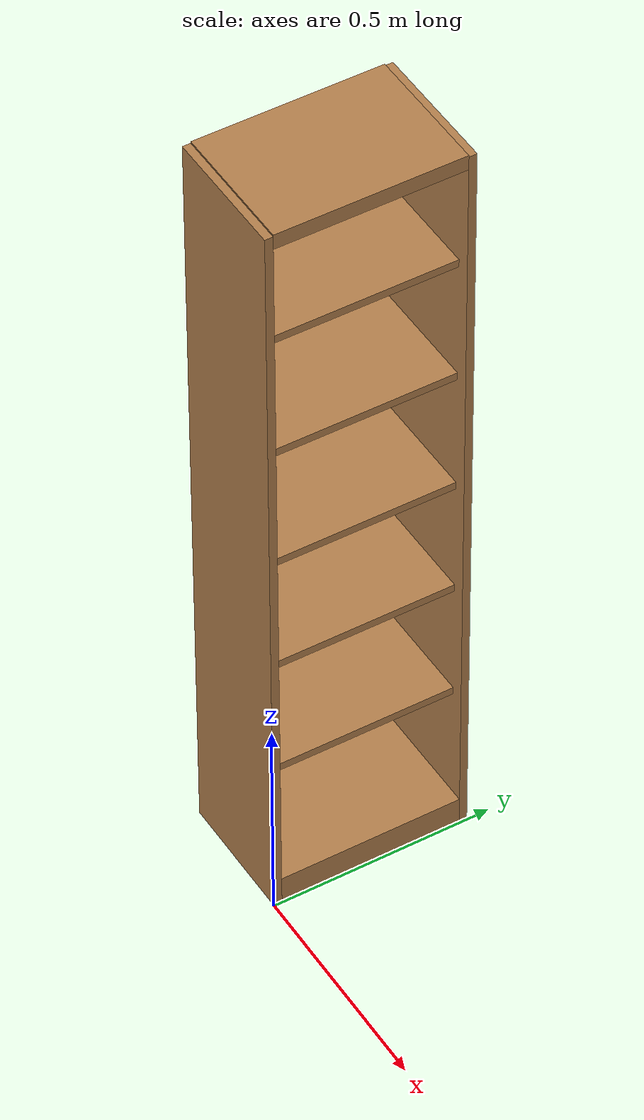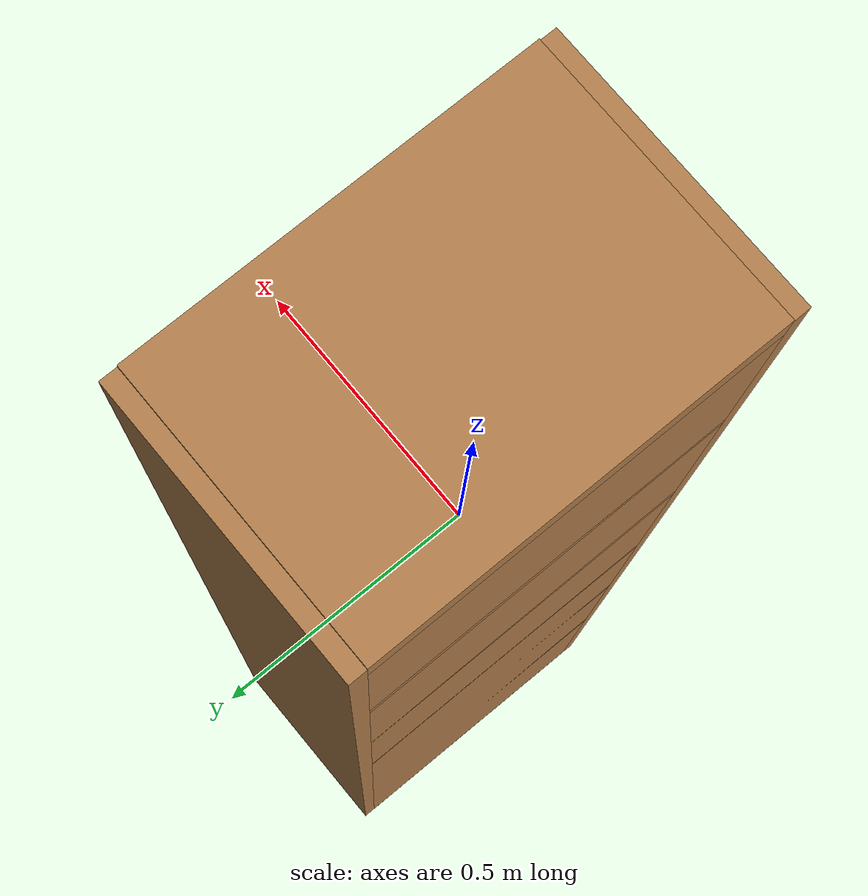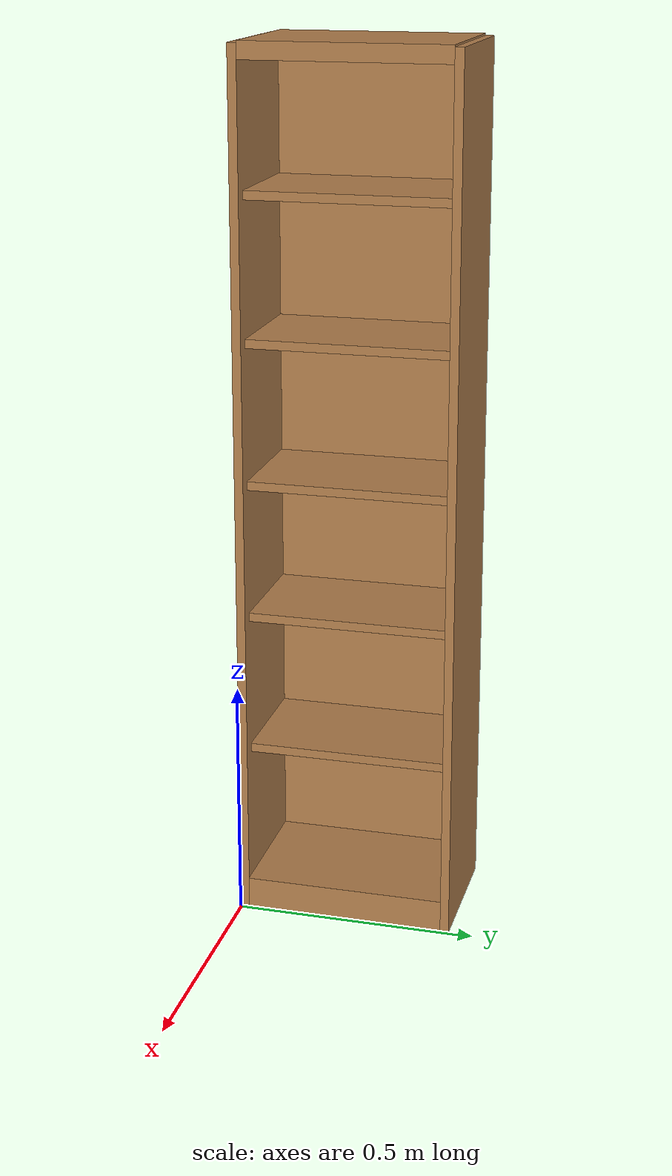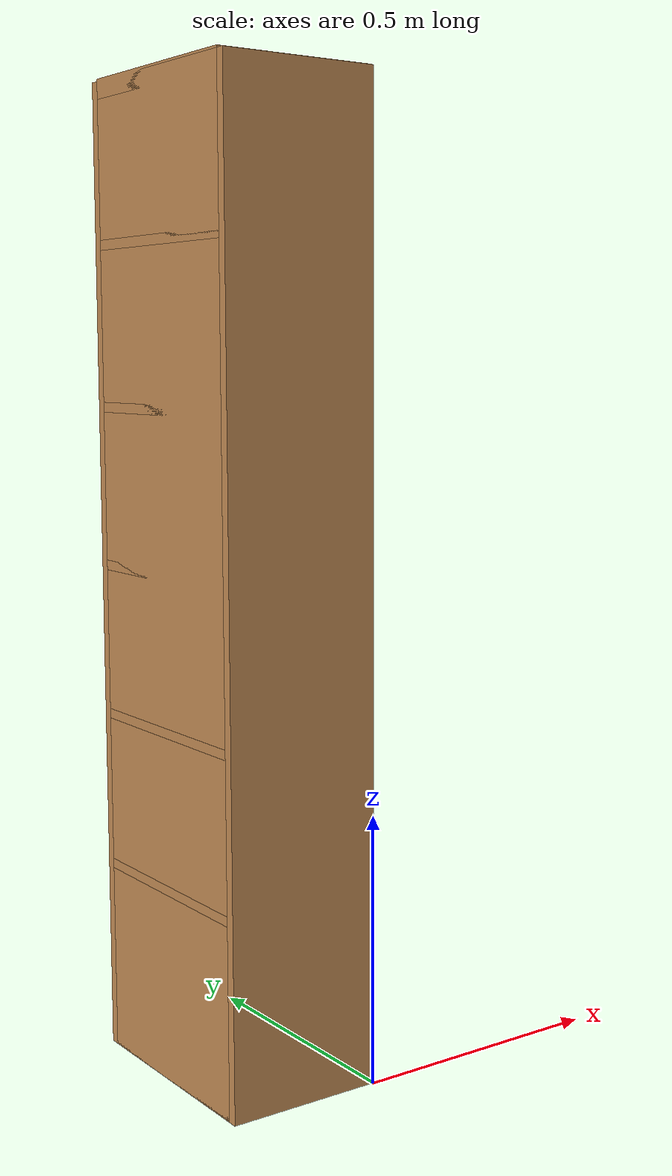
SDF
<?xml version="1.0" ?>
<sdf version="1.4">
    <model name='high_shelf'>
      <link name='link'>
        <inertial>
          <mass>5</mass>
          <inertia>
            <ixx>1</ixx>
            <ixy>0</ixy>
            <ixz>0</ixz>
            <iyy>1</iyy>
            <iyz>0</iyz>
            <izz>1</izz>
          </inertia>
        </inertial>
        <visual name='left_board'>
          <pose>-0.1475 0.009 0.898 0 0 0</pose>
          <geometry>
            <box>
              <size>0.295 0.018 1.796</size>
            </box>
          </geometry>
          <material>
            <script>
              <uri>model://base_materials/wood/scripts</uri>
              <uri>model://base_materials/wood/textures</uri>
              <name>base_materials/light_wood</name>
            </script>
          </material>
        </visual>
        <collision name='collision_left_board'>
          <pose>-0.1475 0.009 0.898 0 0 0</pose>
          <geometry>
            <box>
              <size>0.295 0.018 1.796</size>
            </box>
          </geometry>
          <max_contacts>10</max_contacts>
          <surface>
            <bounce/>
            <friction>
              <ode/>
            </friction>
            <contact>
              <ode/>
            </contact>
          </surface>
        </collision>
        <visual name='right_board'>
          <pose>-0.1475 0.441 0.898 0 0 0</pose>
          <geometry>
            <box>
              <size>0.295 0.018 1.796</size>
            </box>
          </geometry>
          <material>
            <script>
              <uri>model://base_materials/wood/scripts</uri>
              <uri>model://base_materials/wood/textures</uri>
              <name>base_materials/light_wood</name>
            </script>
          </material>
        </visual>
        <collision name='collision_right_board'>
          <pose>-0.1475 0.441 0.898 0 0 0</pose>
          <geometry>
            <box>
              <size>0.295 0.018 1.796</size>
            </box>
          </geometry>
          <max_contacts>10</max_contacts>
          <surface>
            <bounce/>
            <friction>
              <ode/>
            </friction>
            <contact>
              <ode/>
            </contact>
          </surface>
        </collision>
        <visual name='top_board'>
          <pose>-0.1475 0.225 1.7825 0 0 0</pose>
          <geometry>
            <box>
              <size>0.295 0.414 0.035</size>
            </box>
          </geometry>
          <material>
            <script>
              <uri>model://base_materials/wood/scripts</uri>
              <uri>model://base_materials/wood/textures</uri>
              <name>base_materials/light_wood</name>
            </script>
          </material>
        </visual>
        <collision name='collision_top_board'>
          <pose>-0.1475 0.225 1.7825 0 0 0</pose>
          <geometry>
            <box>
              <size>0.295 0.414 0.035</size>
            </box>
          </geometry>
          <max_contacts>10</max_contacts>
          <surface/>
        </collision>
        <visual name='1st_shelf'>
          <pose>-0.162 0.225 1.51 0 0 0</pose>
          <geometry>
            <box>
              <size>0.266 0.414 0.018</size>
            </box>
          </geometry>
          <material>
            <script>
              <uri>model://base_materials/wood/scripts</uri>
              <uri>model://base_materials/wood/textures</uri>
              <name>base_materials/light_wood</name>
            </script>
          </material>
        </visual>
        <collision name='collision_1st_shelf'>
          <pose>-0.162 0.225 1.51 0 0 0</pose>
          <geometry>
            <box>
              <size>0.266 0.414 0.018</size>
            </box>
          </geometry>
          <max_contacts>10</max_contacts>
          <surface/>
        </collision>
        <visual name='2nd_shelf'>
          <pose>-0.162 0.225 1.22 0 0 0</pose>
          <geometry>
            <box>
              <size>0.266 0.414 0.018</size>
            </box>
          </geometry>
          <material>
            <script>
              <uri>model://base_materials/wood/scripts</uri>
              <uri>model://base_materials/wood/textures</uri>
              <name>base_materials/light_wood</name>
            </script>
          </material>
        </visual>
        <collision name='collision_2nd_shelf'>
          <pose>-0.162 0.225 1.22 0 0 0</pose>
          <geometry>
            <box>
              <size>0.266 0.414 0.018</size>
            </box>
          </geometry>
          <max_contacts>10</max_contacts>
          <surface/>
        </collision>
        <visual name='3rd_shelf'>
          <pose>-0.162 0.225 0.93 0 0 0</pose>
          <geometry>
            <box>
              <size>0.266 0.414 0.018</size>
            </box>
          </geometry>
          <material>
            <script>
              <uri>model://base_materials/wood/scripts</uri>
              <uri>model://base_materials/wood/textures</uri>
              <name>base_materials/light_wood</name>
            </script>
          </material>
        </visual>
        <collision name='collision_3rd_shelf'>
          <pose>-0.162 0.225 0.93 0 0 0</pose>
          <geometry>
            <box>
              <size>0.266 0.414 0.018</size>
            </box>
          </geometry>
          <max_contacts>10</max_contacts>
          <surface/>
        </collision>
        <visual name='4th_shelf'>
          <pose>-0.162 0.225 0.65 0 0 0</pose>
          <geometry>
            <box>
              <size>0.266 0.414 0.018</size>
            </box>
          </geometry>
          <material>
            <script>
              <uri>model://base_materials/wood/scripts</uri>
              <uri>model://base_materials/wood/textures</uri>
              <name>base_materials/light_wood</name>
            </script>
          </material>
        </visual>
        <collision name='collision_4th_shelf'>
          <pose>-0.162 0.225 0.65 0 0 0</pose>
          <geometry>
            <box>
              <size>0.266 0.414 0.018</size>
            </box>
          </geometry>
          <max_contacts>10</max_contacts>
          <surface/>
        </collision>
        <visual name='5th_shelf'>
          <pose>-0.162 0.225 0.36 0 0 0</pose>
          <geometry>
            <box>
              <size>0.266 0.414 0.018</size>
            </box>
          </geometry>
          <material>
            <script>
              <uri>model://base_materials/wood/scripts</uri>
              <uri>model://base_materials/wood/textures</uri>
              <name>base_materials/light_wood</name>
            </script>
          </material>
        </visual>
        <collision name='collision_5th_shelf'>
          <pose>-0.162 0.225 0.36 0 0 0</pose>
          <geometry>
            <box>
              <size>0.266 0.414 0.018</size>
            </box>
          </geometry>
          <max_contacts>10</max_contacts>
          <surface/>
        </collision>
        <visual name='bottom_board'>
          <pose>-0.1475 0.225 0.035 0 0 0</pose>
          <geometry>
            <box>
              <size>0.295 0.414 0.07</size>
            </box>
          </geometry>
          <material>
            <script>
              <uri>model://base_materials/wood/scripts</uri>
              <uri>model://base_materials/wood/textures</uri>
              <name>base_materials/light_wood</name>
            </script>
          </material>
        </visual>
        <collision name='collision_bottom_board'>
          <pose>-0.1475 0.225 0.035 0 0 0</pose>
          <geometry>
            <box>
              <size>0.295 0.414 0.07</size>
            </box>
          </geometry>
          <max_contacts>10</max_contacts>
          <surface/>
        </collision>
        <visual name='back_board'>
          <pose>-0.286 0.225 0.898 0 0 0</pose>
          <geometry>
            <box>
              <size>0.018 0.414 1.796</size>
            </box>
          </geometry>
          <material>
            <script>
              <uri>model://base_materials/wood/scripts</uri>
              <uri>model://base_materials/wood/textures</uri>
              <name>base_materials/light_wood</name>
            </script>
          </material>
        </visual>
        <collision name='collision_back_board'>
          <pose>-0.286 0.225 0.898 0 0 0</pose>
          <geometry>
            <box>
              <size>0.018 0.414 1.796</size>
            </box>
          </geometry>
          <max_contacts>10</max_contacts>
          <surface/>
        </collision>
        <velocity_decay>
          <linear>0</linear>
          <angular>0</angular>
        </velocity_decay>
        <self_collide>0</self_collide>
        <kinematic>0</kinematic>
        <gravity>1</gravity>
      </link>
      <static>1</static>
    </model>
</sdf>
